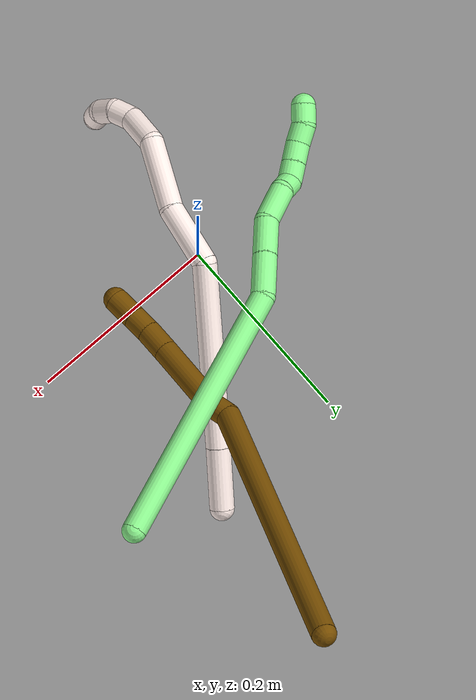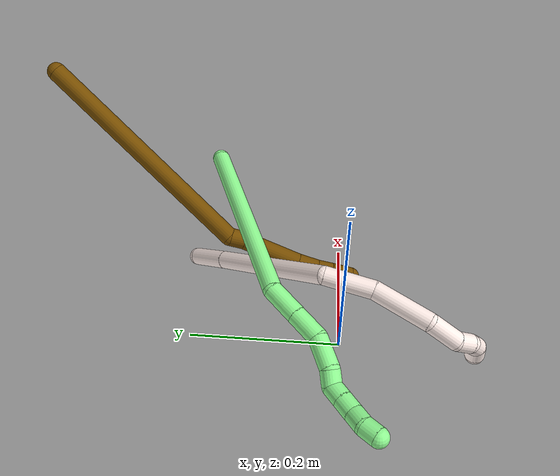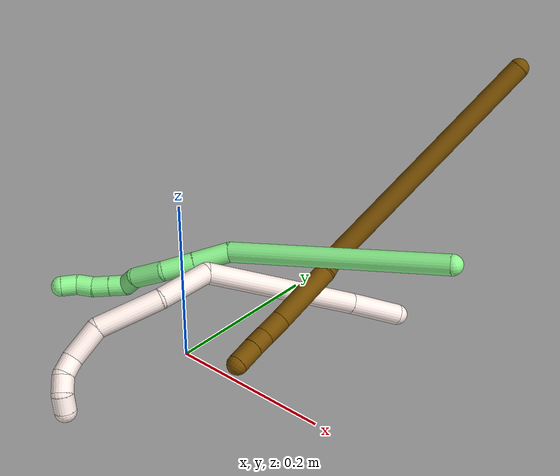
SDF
<sdf version="1.7">
 <world name="default">
  <model name="11">
   <static>0</static>
   <link name="11">
    <collision name="collision-cylinder-e_1_1_4">
     <pose>0.004546 -0.018647 0.025262 0.63588 0.14379 0.047395</pose>
     <geometry><cylinder><radius>0.0125</radius><length>0.063453</length></cylinder></geometry>
     <surface>
      <friction><ode><mu>1.16</mu><mu2>1.16</mu2><slip1>0</slip1><slip2>0</slip2></ode></friction>
      <contact><ode><kp>1e+06</kp><kd>1</kd><max_vel>0</max_vel><min_depth>0.001</min_depth></ode></contact>
     </surface>
    </collision>
    <visual name="visual-cylinder-e_1_1_4">
     <pose>0.004546 -0.018647 0.025262 0.63588 0.14379 0.047395</pose>
     <geometry><cylinder><radius>0.0125</radius><length>0.063453</length></cylinder></geometry>
     <material><ambient>1 0.933333 0.909804 1</ambient></material>
    </visual>
    <collision name="collision-cylinder-e_2_4_5">
     <pose>0.020405 -0.091372 0.126279 0.619955 0.120943 0.038781</pose>
     <geometry><cylinder><radius>0.0125</radius><length>0.187522</length></cylinder></geometry>
     <surface>
      <friction><ode><mu>1.16</mu><mu2>1.16</mu2><slip1>0</slip1><slip2>0</slip2></ode></friction>
      <contact><ode><kp>1e+06</kp><kd>1</kd><max_vel>0</max_vel><min_depth>0.001</min_depth></ode></contact>
     </surface>
    </collision>
    <visual name="visual-cylinder-e_2_4_5">
     <pose>0.020405 -0.091372 0.126279 0.619955 0.120943 0.038781</pose>
     <geometry><cylinder><radius>0.0125</radius><length>0.187522</length></cylinder></geometry>
     <material><ambient>1 0.933333 0.909804 1</ambient></material>
    </visual>
    <collision name="collision-cylinder-e_3_5_6">
     <pose>0.015041 -0.156907 0.227663 0.420425 -0.536004 -0.11705</pose>
     <geometry><cylinder><radius>0.0125</radius><length>0.065305</length></cylinder></geometry>
     <surface>
      <friction><ode><mu>1.16</mu><mu2>1.16</mu2><slip1>0</slip1><slip2>0</slip2></ode></friction>
      <contact><ode><kp>1e+06</kp><kd>1</kd><max_vel>0</max_vel><min_depth>0.001</min_depth></ode></contact>
     </surface>
    </collision>
    <visual name="visual-cylinder-e_3_5_6">
     <pose>0.015041 -0.156907 0.227663 0.420425 -0.536004 -0.11705</pose>
     <geometry><cylinder><radius>0.0125</radius><length>0.065305</length></cylinder></geometry>
     <material><ambient>1 0.933333 0.909804 1</ambient></material>
    </visual>
    <collision name="collision-cylinder-e_4_6_7">
     <pose>-0.015192 -0.174944 0.289131 0.181551 -0.356169 -0.032765</pose>
     <geometry><cylinder><radius>0.0125</radius><length>0.077758</length></cylinder></geometry>
     <surface>
      <friction><ode><mu>1.16</mu><mu2>1.16</mu2><slip1>0</slip1><slip2>0</slip2></ode></friction>
      <contact><ode><kp>1e+06</kp><kd>1</kd><max_vel>0</max_vel><min_depth>0.001</min_depth></ode></contact>
     </surface>
    </collision>
    <visual name="visual-cylinder-e_4_6_7">
     <pose>-0.015192 -0.174944 0.289131 0.181551 -0.356169 -0.032765</pose>
     <geometry><cylinder><radius>0.0125</radius><length>0.077758</length></cylinder></geometry>
     <material><ambient>1 0.933333 0.909804 1</ambient></material>
    </visual>
    <collision name="collision-cylinder-e_5_7_8">
     <pose>-0.043773 -0.180004 0.340401 -0.098192 -0.769708 0.0398</pose>
     <geometry><cylinder><radius>0.0125</radius><length>0.043181</length></cylinder></geometry>
     <surface>
      <friction><ode><mu>1.16</mu><mu2>1.16</mu2><slip1>0</slip1><slip2>0</slip2></ode></friction>
      <contact><ode><kp>1e+06</kp><kd>1</kd><max_vel>0</max_vel><min_depth>0.001</min_depth></ode></contact>
     </surface>
    </collision>
    <visual name="visual-cylinder-e_5_7_8">
     <pose>-0.043773 -0.180004 0.340401 -0.098192 -0.769708 0.0398</pose>
     <geometry><cylinder><radius>0.0125</radius><length>0.043181</length></cylinder></geometry>
     <material><ambient>1 0.933333 0.909804 1</ambient></material>
    </visual>
    <collision name="collision-cylinder-e_6_8_9">
     <pose>-0.068495 -0.180511 0.360602 0.401741 -1.07982 -0.242856</pose>
     <geometry><cylinder><radius>0.0125</radius><length>0.021991</length></cylinder></geometry>
     <surface>
      <friction><ode><mu>1.16</mu><mu2>1.16</mu2><slip1>0</slip1><slip2>0</slip2></ode></friction>
      <contact><ode><kp>1e+06</kp><kd>1</kd><max_vel>0</max_vel><min_depth>0.001</min_depth></ode></contact>
     </surface>
    </collision>
    <visual name="visual-cylinder-e_6_8_9">
     <pose>-0.068495 -0.180511 0.360602 0.401741 -1.07982 -0.242856</pose>
     <geometry><cylinder><radius>0.0125</radius><length>0.021991</length></cylinder></geometry>
     <material><ambient>1 0.933333 0.909804 1</ambient></material>
    </visual>
    <collision name="collision-cylinder-e_7_9_10">
     <pose>-0.088066 -0.180461 0.366922 -0.930143 -1.31419 0.738682</pose>
     <geometry><cylinder><radius>0.0125</radius><length>0.020418</length></cylinder></geometry>
     <surface>
      <friction><ode><mu>1.16</mu><mu2>1.16</mu2><slip1>0</slip1><slip2>0</slip2></ode></friction>
      <contact><ode><kp>1e+06</kp><kd>1</kd><max_vel>0</max_vel><min_depth>0.001</min_depth></ode></contact>
     </surface>
    </collision>
    <visual name="visual-cylinder-e_7_9_10">
     <pose>-0.088066 -0.180461 0.366922 -0.930143 -1.31419 0.738682</pose>
     <geometry><cylinder><radius>0.0125</radius><length>0.020418</length></cylinder></geometry>
     <material><ambient>1 0.933333 0.909804 1</ambient></material>
    </visual>
    <collision name="collision-cylinder-e_8_10_2">
     <pose>-0.105296 -0.171397 0.369392 -1.43977 -0.806793 0.716222</pose>
     <geometry><cylinder><radius>0.0125</radius><length>0.020373</length></cylinder></geometry>
     <surface>
      <friction><ode><mu>1.16</mu><mu2>1.16</mu2><slip1>0</slip1><slip2>0</slip2></ode></friction>
      <contact><ode><kp>1e+06</kp><kd>1</kd><max_vel>0</max_vel><min_depth>0.001</min_depth></ode></contact>
     </surface>
    </collision>
    <visual name="visual-cylinder-e_8_10_2">
     <pose>-0.105296 -0.171397 0.369392 -1.43977 -0.806793 0.716222</pose>
     <geometry><cylinder><radius>0.0125</radius><length>0.020373</length></cylinder></geometry>
     <material><ambient>1 0.933333 0.909804 1</ambient></material>
    </visual>
    <collision name="collision-sphere-2">
     <pose>-0.112651 -0.16441 0.370313 0 -0 0</pose>
     <geometry><sphere><radius>0.0125</radius></sphere></geometry>
     <surface>
      <friction><ode><mu>1.16</mu><mu2>1.16</mu2><slip1>0</slip1><slip2>0</slip2></ode></friction>
      <contact><ode><kp>1e+06</kp><kd>1</kd><max_vel>0</max_vel><min_depth>0.001</min_depth></ode></contact>
     </surface>
    </collision>
    <visual name="visual-sphere-2">
     <pose>-0.112651 -0.16441 0.370313 0 -0 0</pose>
     <geometry><sphere><radius>0.0125</radius></sphere></geometry>
     <material><ambient>1 0.933333 0.909804 1</ambient></material>
    </visual>
    <collision name="collision-sphere-10">
     <pose>-0.097941 -0.178384 0.368471 0 -0 0</pose>
     <geometry><sphere><radius>0.0125</radius></sphere></geometry>
     <surface>
      <friction><ode><mu>1.16</mu><mu2>1.16</mu2><slip1>0</slip1><slip2>0</slip2></ode></friction>
      <contact><ode><kp>1e+06</kp><kd>1</kd><max_vel>0</max_vel><min_depth>0.001</min_depth></ode></contact>
     </surface>
    </collision>
    <visual name="visual-sphere-10">
     <pose>-0.097941 -0.178384 0.368471 0 -0 0</pose>
     <geometry><sphere><radius>0.0125</radius></sphere></geometry>
     <material><ambient>1 0.933333 0.909804 1</ambient></material>
    </visual>
    <collision name="collision-sphere-9">
     <pose>-0.078192 -0.182538 0.365374 0 -0 0</pose>
     <geometry><sphere><radius>0.0125</radius></sphere></geometry>
     <surface>
      <friction><ode><mu>1.16</mu><mu2>1.16</mu2><slip1>0</slip1><slip2>0</slip2></ode></friction>
      <contact><ode><kp>1e+06</kp><kd>1</kd><max_vel>0</max_vel><min_depth>0.001</min_depth></ode></contact>
     </surface>
    </collision>
    <visual name="visual-sphere-9">
     <pose>-0.078192 -0.182538 0.365374 0 -0 0</pose>
     <geometry><sphere><radius>0.0125</radius></sphere></geometry>
     <material><ambient>1 0.933333 0.909804 1</ambient></material>
    </visual>
    <collision name="collision-sphere-4">
     <pose>0.009092 -0.037295 0.050524 0 -0 0</pose>
     <geometry><sphere><radius>0.0125</radius></sphere></geometry>
     <surface>
      <friction><ode><mu>1.16</mu><mu2>1.16</mu2><slip1>0</slip1><slip2>0</slip2></ode></friction>
      <contact><ode><kp>1e+06</kp><kd>1</kd><max_vel>0</max_vel><min_depth>0.001</min_depth></ode></contact>
     </surface>
    </collision>
    <visual name="visual-sphere-4">
     <pose>0.009092 -0.037295 0.050524 0 -0 0</pose>
     <geometry><sphere><radius>0.0125</radius></sphere></geometry>
     <material><ambient>1 0.933333 0.909804 1</ambient></material>
    </visual>
    <collision name="collision-sphere-1">
     <geometry><sphere><radius>0.0125</radius></sphere></geometry>
     <surface>
      <friction><ode><mu>1.16</mu><mu2>1.16</mu2><slip1>0</slip1><slip2>0</slip2></ode></friction>
      <contact><ode><kp>1e+06</kp><kd>1</kd><max_vel>0</max_vel><min_depth>0.001</min_depth></ode></contact>
     </surface>
    </collision>
    <visual name="visual-sphere-1">
     <geometry><sphere><radius>0.0125</radius></sphere></geometry>
     <material><ambient>1 0.933333 0.909804 1</ambient></material>
    </visual>
    <collision name="collision-sphere-8">
     <pose>-0.058799 -0.178484 0.355831 0 -0 0</pose>
     <geometry><sphere><radius>0.0125</radius></sphere></geometry>
     <surface>
      <friction><ode><mu>1.16</mu><mu2>1.16</mu2><slip1>0</slip1><slip2>0</slip2></ode></friction>
      <contact><ode><kp>1e+06</kp><kd>1</kd><max_vel>0</max_vel><min_depth>0.001</min_depth></ode></contact>
     </surface>
    </collision>
    <visual name="visual-sphere-8">
     <pose>-0.058799 -0.178484 0.355831 0 -0 0</pose>
     <geometry><sphere><radius>0.0125</radius></sphere></geometry>
     <material><ambient>1 0.933333 0.909804 1</ambient></material>
    </visual>
    <collision name="collision-sphere-5">
     <pose>0.031717 -0.145449 0.202034 0 -0 0</pose>
     <geometry><sphere><radius>0.0125</radius></sphere></geometry>
     <surface>
      <friction><ode><mu>1.16</mu><mu2>1.16</mu2><slip1>0</slip1><slip2>0</slip2></ode></friction>
      <contact><ode><kp>1e+06</kp><kd>1</kd><max_vel>0</max_vel><min_depth>0.001</min_depth></ode></contact>
     </surface>
    </collision>
    <visual name="visual-sphere-5">
     <pose>0.031717 -0.145449 0.202034 0 -0 0</pose>
     <geometry><sphere><radius>0.0125</radius></sphere></geometry>
     <material><ambient>1 0.933333 0.909804 1</ambient></material>
    </visual>
    <collision name="collision-sphere-6">
     <pose>-0.001635 -0.168365 0.253291 0 -0 0</pose>
     <geometry><sphere><radius>0.0125</radius></sphere></geometry>
     <surface>
      <friction><ode><mu>1.16</mu><mu2>1.16</mu2><slip1>0</slip1><slip2>0</slip2></ode></friction>
      <contact><ode><kp>1e+06</kp><kd>1</kd><max_vel>0</max_vel><min_depth>0.001</min_depth></ode></contact>
     </surface>
    </collision>
    <visual name="visual-sphere-6">
     <pose>-0.001635 -0.168365 0.253291 0 -0 0</pose>
     <geometry><sphere><radius>0.0125</radius></sphere></geometry>
     <material><ambient>1 0.933333 0.909804 1</ambient></material>
    </visual>
    <collision name="collision-sphere-7">
     <pose>-0.028748 -0.181524 0.324972 0 -0 0</pose>
     <geometry><sphere><radius>0.0125</radius></sphere></geometry>
     <surface>
      <friction><ode><mu>1.16</mu><mu2>1.16</mu2><slip1>0</slip1><slip2>0</slip2></ode></friction>
      <contact><ode><kp>1e+06</kp><kd>1</kd><max_vel>0</max_vel><min_depth>0.001</min_depth></ode></contact>
     </surface>
    </collision>
    <visual name="visual-sphere-7">
     <pose>-0.028748 -0.181524 0.324972 0 -0 0</pose>
     <geometry><sphere><radius>0.0125</radius></sphere></geometry>
     <material><ambient>1 0.933333 0.909804 1</ambient></material>
    </visual>
    <inertial>
     <pose>-0.006848 -0.122173 0.200558 0 -0 0</pose>
     <mass>0.5</mass>
     <inertia>
      <ixx>0.000656</ixx>
      <ixy>0</ixy>
      <ixz>0</ixz>
      <iyy>0.000558</iyy>
      <iyz>0</iyz>
      <izz>0.000346</izz>
     </inertia>
    </inertial>
   </link>
   <pose>0.152605 0.213244 0.01519 -1.83249 -0.53856 2.42559</pose>
  </model>
  <model name="12">
   <static>0</static>
   <link name="12">
    <collision name="collision-cylinder-e_1_1_4">
     <pose>-0.023854 -0.02185 -0.15649 3.00287 -0.149836 -1.64803</pose>
     <geometry><cylinder><radius>0.0125</radius><length>0.319597</length></cylinder></geometry>
     <surface>
      <friction><ode><mu>1.16</mu><mu2>1.16</mu2><slip1>0</slip1><slip2>0</slip2></ode></friction>
      <contact><ode><kp>1e+06</kp><kd>1</kd><max_vel>0</max_vel><min_depth>0.001</min_depth></ode></contact>
     </surface>
    </collision>
    <visual name="visual-cylinder-e_1_1_4">
     <pose>-0.023854 -0.02185 -0.15649 3.00287 -0.149836 -1.64803</pose>
     <geometry><cylinder><radius>0.0125</radius><length>0.319597</length></cylinder></geometry>
     <material><ambient>0.466667 0.301961 0 1</ambient></material>
    </visual>
    <collision name="collision-cylinder-e_2_4_5">
     <pose>-0.043577 -0.046496 -0.32247 2.85506 0.395586 1.89382</pose>
     <geometry><cylinder><radius>0.0125</radius><length>0.021443</length></cylinder></geometry>
     <surface>
      <friction><ode><mu>1.16</mu><mu2>1.16</mu2><slip1>0</slip1><slip2>0</slip2></ode></friction>
      <contact><ode><kp>1e+06</kp><kd>1</kd><max_vel>0</max_vel><min_depth>0.001</min_depth></ode></contact>
     </surface>
    </collision>
    <visual name="visual-cylinder-e_2_4_5">
     <pose>-0.043577 -0.046496 -0.32247 2.85506 0.395586 1.89382</pose>
     <geometry><cylinder><radius>0.0125</radius><length>0.021443</length></cylinder></geometry>
     <material><ambient>0.466667 0.301961 0 1</ambient></material>
    </visual>
    <collision name="collision-cylinder-e_3_5_6">
     <pose>-0.033097 -0.063024 -0.369646 2.79216 0.156959 0.838248</pose>
     <geometry><cylinder><radius>0.0125</radius><length>0.081218</length></cylinder></geometry>
     <surface>
      <friction><ode><mu>1.16</mu><mu2>1.16</mu2><slip1>0</slip1><slip2>0</slip2></ode></friction>
      <contact><ode><kp>1e+06</kp><kd>1</kd><max_vel>0</max_vel><min_depth>0.001</min_depth></ode></contact>
     </surface>
    </collision>
    <visual name="visual-cylinder-e_3_5_6">
     <pose>-0.033097 -0.063024 -0.369646 2.79216 0.156959 0.838248</pose>
     <geometry><cylinder><radius>0.0125</radius><length>0.081218</length></cylinder></geometry>
     <material><ambient>0.466667 0.301961 0 1</ambient></material>
    </visual>
    <collision name="collision-cylinder-e_4_6_7">
     <pose>-0.023942 -0.082466 -0.420097 2.72096 0.198099 0.871357</pose>
     <geometry><cylinder><radius>0.0125</radius><length>0.028525</length></cylinder></geometry>
     <surface>
      <friction><ode><mu>1.16</mu><mu2>1.16</mu2><slip1>0</slip1><slip2>0</slip2></ode></friction>
      <contact><ode><kp>1e+06</kp><kd>1</kd><max_vel>0</max_vel><min_depth>0.001</min_depth></ode></contact>
     </surface>
    </collision>
    <visual name="visual-cylinder-e_4_6_7">
     <pose>-0.023942 -0.082466 -0.420097 2.72096 0.198099 0.871357</pose>
     <geometry><cylinder><radius>0.0125</radius><length>0.028525</length></cylinder></geometry>
     <material><ambient>0.466667 0.301961 0 1</ambient></material>
    </visual>
    <collision name="collision-cylinder-e_5_7_8">
     <pose>-0.018205 -0.09283 -0.441854 2.66404 0.281737 1.055</pose>
     <geometry><cylinder><radius>0.0125</radius><length>0.021083</length></cylinder></geometry>
     <surface>
      <friction><ode><mu>1.16</mu><mu2>1.16</mu2><slip1>0</slip1><slip2>0</slip2></ode></friction>
      <contact><ode><kp>1e+06</kp><kd>1</kd><max_vel>0</max_vel><min_depth>0.001</min_depth></ode></contact>
     </surface>
    </collision>
    <visual name="visual-cylinder-e_5_7_8">
     <pose>-0.018205 -0.09283 -0.441854 2.66404 0.281737 1.055</pose>
     <geometry><cylinder><radius>0.0125</radius><length>0.021083</length></cylinder></geometry>
     <material><ambient>0.466667 0.301961 0 1</ambient></material>
    </visual>
    <collision name="collision-cylinder-e_6_8_2">
     <pose>-0.011422 -0.10332 -0.463053 2.69559 0.277373 1.1035</pose>
     <geometry><cylinder><radius>0.0125</radius><length>0.028134</length></cylinder></geometry>
     <surface>
      <friction><ode><mu>1.16</mu><mu2>1.16</mu2><slip1>0</slip1><slip2>0</slip2></ode></friction>
      <contact><ode><kp>1e+06</kp><kd>1</kd><max_vel>0</max_vel><min_depth>0.001</min_depth></ode></contact>
     </surface>
    </collision>
    <visual name="visual-cylinder-e_6_8_2">
     <pose>-0.011422 -0.10332 -0.463053 2.69559 0.277373 1.1035</pose>
     <geometry><cylinder><radius>0.0125</radius><length>0.028134</length></cylinder></geometry>
     <material><ambient>0.466667 0.301961 0 1</ambient></material>
    </visual>
    <collision name="collision-sphere-2">
     <pose>-0.00757 -0.109156 -0.475259 0 -0 0</pose>
     <geometry><sphere><radius>0.0125</radius></sphere></geometry>
     <surface>
      <friction><ode><mu>1.16</mu><mu2>1.16</mu2><slip1>0</slip1><slip2>0</slip2></ode></friction>
      <contact><ode><kp>1e+06</kp><kd>1</kd><max_vel>0</max_vel><min_depth>0.001</min_depth></ode></contact>
     </surface>
    </collision>
    <visual name="visual-sphere-2">
     <pose>-0.00757 -0.109156 -0.475259 0 -0 0</pose>
     <geometry><sphere><radius>0.0125</radius></sphere></geometry>
     <material><ambient>0.466667 0.301961 0 1</ambient></material>
    </visual>
    <collision name="collision-sphere-4">
     <pose>-0.047708 -0.043699 -0.31298 0 -0 0</pose>
     <geometry><sphere><radius>0.0125</radius></sphere></geometry>
     <surface>
      <friction><ode><mu>1.16</mu><mu2>1.16</mu2><slip1>0</slip1><slip2>0</slip2></ode></friction>
      <contact><ode><kp>1e+06</kp><kd>1</kd><max_vel>0</max_vel><min_depth>0.001</min_depth></ode></contact>
     </surface>
    </collision>
    <visual name="visual-sphere-4">
     <pose>-0.047708 -0.043699 -0.31298 0 -0 0</pose>
     <geometry><sphere><radius>0.0125</radius></sphere></geometry>
     <material><ambient>0.466667 0.301961 0 1</ambient></material>
    </visual>
    <collision name="collision-sphere-1">
     <geometry><sphere><radius>0.0125</radius></sphere></geometry>
     <surface>
      <friction><ode><mu>1.16</mu><mu2>1.16</mu2><slip1>0</slip1><slip2>0</slip2></ode></friction>
      <contact><ode><kp>1e+06</kp><kd>1</kd><max_vel>0</max_vel><min_depth>0.001</min_depth></ode></contact>
     </surface>
    </collision>
    <visual name="visual-sphere-1">
     <geometry><sphere><radius>0.0125</radius></sphere></geometry>
     <material><ambient>0.466667 0.301961 0 1</ambient></material>
    </visual>
    <collision name="collision-sphere-8">
     <pose>-0.015274 -0.097484 -0.450847 0 -0 0</pose>
     <geometry><sphere><radius>0.0125</radius></sphere></geometry>
     <surface>
      <friction><ode><mu>1.16</mu><mu2>1.16</mu2><slip1>0</slip1><slip2>0</slip2></ode></friction>
      <contact><ode><kp>1e+06</kp><kd>1</kd><max_vel>0</max_vel><min_depth>0.001</min_depth></ode></contact>
     </surface>
    </collision>
    <visual name="visual-sphere-8">
     <pose>-0.015274 -0.097484 -0.450847 0 -0 0</pose>
     <geometry><sphere><radius>0.0125</radius></sphere></geometry>
     <material><ambient>0.466667 0.301961 0 1</ambient></material>
    </visual>
    <collision name="collision-sphere-5">
     <pose>-0.039445 -0.049292 -0.33196 0 -0 0</pose>
     <geometry><sphere><radius>0.0125</radius></sphere></geometry>
     <surface>
      <friction><ode><mu>1.16</mu><mu2>1.16</mu2><slip1>0</slip1><slip2>0</slip2></ode></friction>
      <contact><ode><kp>1e+06</kp><kd>1</kd><max_vel>0</max_vel><min_depth>0.001</min_depth></ode></contact>
     </surface>
    </collision>
    <visual name="visual-sphere-5">
     <pose>-0.039445 -0.049292 -0.33196 0 -0 0</pose>
     <geometry><sphere><radius>0.0125</radius></sphere></geometry>
     <material><ambient>0.466667 0.301961 0 1</ambient></material>
    </visual>
    <collision name="collision-sphere-6">
     <pose>-0.026749 -0.076756 -0.407332 0 -0 0</pose>
     <geometry><sphere><radius>0.0125</radius></sphere></geometry>
     <surface>
      <friction><ode><mu>1.16</mu><mu2>1.16</mu2><slip1>0</slip1><slip2>0</slip2></ode></friction>
      <contact><ode><kp>1e+06</kp><kd>1</kd><max_vel>0</max_vel><min_depth>0.001</min_depth></ode></contact>
     </surface>
    </collision>
    <visual name="visual-sphere-6">
     <pose>-0.026749 -0.076756 -0.407332 0 -0 0</pose>
     <geometry><sphere><radius>0.0125</radius></sphere></geometry>
     <material><ambient>0.466667 0.301961 0 1</ambient></material>
    </visual>
    <collision name="collision-sphere-7">
     <pose>-0.021136 -0.088176 -0.432861 0 -0 0</pose>
     <geometry><sphere><radius>0.0125</radius></sphere></geometry>
     <surface>
      <friction><ode><mu>1.16</mu><mu2>1.16</mu2><slip1>0</slip1><slip2>0</slip2></ode></friction>
      <contact><ode><kp>1e+06</kp><kd>1</kd><max_vel>0</max_vel><min_depth>0.001</min_depth></ode></contact>
     </surface>
    </collision>
    <visual name="visual-sphere-7">
     <pose>-0.021136 -0.088176 -0.432861 0 -0 0</pose>
     <geometry><sphere><radius>0.0125</radius></sphere></geometry>
     <material><ambient>0.466667 0.301961 0 1</ambient></material>
    </visual>
    <inertial>
     <pose>-0.025269 -0.04063 -0.242554 0 -0 0</pose>
     <mass>0.5</mass>
     <inertia>
      <ixx>-0.002825</ixx>
      <ixy>0</ixy>
      <ixz>0</ixz>
      <iyy>-0.002425</iyy>
      <iyz>0</iyz>
      <izz>0.000754</izz>
     </inertia>
    </inertial>
   </link>
   <pose>0.183855 0.394597 0.291298 -0.796089 -0.169619 -0.294868</pose>
  </model>
  <model name="13">
   <static>0</static>
   <link name="13">
    <collision name="collision-cylinder-e_1_1_4">
     <pose>-0.1093 0.081219 0.008796 -1.46291 -0.928943 0.845203</pose>
     <geometry><cylinder><radius>0.0125</radius><length>0.272913</length></cylinder></geometry>
     <surface>
      <friction><ode><mu>1.16</mu><mu2>1.16</mu2><slip1>0</slip1><slip2>0</slip2></ode></friction>
      <contact><ode><kp>1e+06</kp><kd>1</kd><max_vel>0</max_vel><min_depth>0.001</min_depth></ode></contact>
     </surface>
    </collision>
    <visual name="visual-cylinder-e_1_1_4">
     <pose>-0.1093 0.081219 0.008796 -1.46291 -0.928943 0.845203</pose>
     <geometry><cylinder><radius>0.0125</radius><length>0.272913</length></cylinder></geometry>
     <material><ambient>0.564706 0.984314 0.572549 1</ambient></material>
    </visual>
    <collision name="collision-cylinder-e_2_4_5">
     <pose>-0.229186 0.181761 0.022235 -1.33502 -0.489475 0.388732</pose>
     <geometry><cylinder><radius>0.0125</radius><length>0.045034</length></cylinder></geometry>
     <surface>
      <friction><ode><mu>1.16</mu><mu2>1.16</mu2><slip1>0</slip1><slip2>0</slip2></ode></friction>
      <contact><ode><kp>1e+06</kp><kd>1</kd><max_vel>0</max_vel><min_depth>0.001</min_depth></ode></contact>
     </surface>
    </collision>
    <visual name="visual-cylinder-e_2_4_5">
     <pose>-0.229186 0.181761 0.022235 -1.33502 -0.489475 0.388732</pose>
     <geometry><cylinder><radius>0.0125</radius><length>0.045034</length></cylinder></geometry>
     <material><ambient>0.564706 0.984314 0.572549 1</ambient></material>
    </visual>
    <collision name="collision-cylinder-e_3_5_6">
     <pose>-0.249008 0.217864 0.030882 -1.33651 -0.491534 0.390973</pose>
     <geometry><cylinder><radius>0.0125</radius><length>0.039134</length></cylinder></geometry>
     <surface>
      <friction><ode><mu>1.16</mu><mu2>1.16</mu2><slip1>0</slip1><slip2>0</slip2></ode></friction>
      <contact><ode><kp>1e+06</kp><kd>1</kd><max_vel>0</max_vel><min_depth>0.001</min_depth></ode></contact>
     </surface>
    </collision>
    <visual name="visual-cylinder-e_3_5_6">
     <pose>-0.249008 0.217864 0.030882 -1.33651 -0.491534 0.390973</pose>
     <geometry><cylinder><radius>0.0125</radius><length>0.039134</length></cylinder></geometry>
     <material><ambient>0.564706 0.984314 0.572549 1</ambient></material>
    </visual>
    <collision name="collision-cylinder-e_4_6_7">
     <pose>-0.273011 0.246867 0.041516 -1.07385 -0.815437 0.503309</pose>
     <geometry><cylinder><radius>0.0125</radius><length>0.04057</length></cylinder></geometry>
     <surface>
      <friction><ode><mu>1.16</mu><mu2>1.16</mu2><slip1>0</slip1><slip2>0</slip2></ode></friction>
      <contact><ode><kp>1e+06</kp><kd>1</kd><max_vel>0</max_vel><min_depth>0.001</min_depth></ode></contact>
     </surface>
    </collision>
    <visual name="visual-cylinder-e_4_6_7">
     <pose>-0.273011 0.246867 0.041516 -1.07385 -0.815437 0.503309</pose>
     <geometry><cylinder><radius>0.0125</radius><length>0.04057</length></cylinder></geometry>
     <material><ambient>0.564706 0.984314 0.572549 1</ambient></material>
    </visual>
    <collision name="collision-cylinder-e_5_7_8">
     <pose>-0.294399 0.262821 0.05489 -0.505119 -0.709646 0.190652</pose>
     <geometry><cylinder><radius>0.0125</radius><length>0.020318</length></cylinder></geometry>
     <surface>
      <friction><ode><mu>1.16</mu><mu2>1.16</mu2><slip1>0</slip1><slip2>0</slip2></ode></friction>
      <contact><ode><kp>1e+06</kp><kd>1</kd><max_vel>0</max_vel><min_depth>0.001</min_depth></ode></contact>
     </surface>
    </collision>
    <visual name="visual-cylinder-e_5_7_8">
     <pose>-0.294399 0.262821 0.05489 -0.505119 -0.709646 0.190652</pose>
     <geometry><cylinder><radius>0.0125</radius><length>0.020318</length></cylinder></geometry>
     <material><ambient>0.564706 0.984314 0.572549 1</ambient></material>
    </visual>
    <collision name="collision-cylinder-e_6_8_9">
     <pose>-0.307203 0.27463 0.062031 -1.5217 -0.65276 0.623508</pose>
     <geometry><cylinder><radius>0.0125</radius><length>0.020368</length></cylinder></geometry>
     <surface>
      <friction><ode><mu>1.16</mu><mu2>1.16</mu2><slip1>0</slip1><slip2>0</slip2></ode></friction>
      <contact><ode><kp>1e+06</kp><kd>1</kd><max_vel>0</max_vel><min_depth>0.001</min_depth></ode></contact>
     </surface>
    </collision>
    <visual name="visual-cylinder-e_6_8_9">
     <pose>-0.307203 0.27463 0.062031 -1.5217 -0.65276 0.623508</pose>
     <geometry><cylinder><radius>0.0125</radius><length>0.020368</length></cylinder></geometry>
     <material><ambient>0.564706 0.984314 0.572549 1</ambient></material>
    </visual>
    <collision name="collision-cylinder-e_7_9_10">
     <pose>-0.319822 0.29108 0.062908 -1.51347 -0.654611 0.62048</pose>
     <geometry><cylinder><radius>0.0125</radius><length>0.021133</length></cylinder></geometry>
     <surface>
      <friction><ode><mu>1.16</mu><mu2>1.16</mu2><slip1>0</slip1><slip2>0</slip2></ode></friction>
      <contact><ode><kp>1e+06</kp><kd>1</kd><max_vel>0</max_vel><min_depth>0.001</min_depth></ode></contact>
     </surface>
    </collision>
    <visual name="visual-cylinder-e_7_9_10">
     <pose>-0.319822 0.29108 0.062908 -1.51347 -0.654611 0.62048</pose>
     <geometry><cylinder><radius>0.0125</radius><length>0.021133</length></cylinder></geometry>
     <material><ambient>0.564706 0.984314 0.572549 1</ambient></material>
    </visual>
    <collision name="collision-cylinder-e_8_10_11">
     <pose>-0.333056 0.306872 0.061889 -1.77015 -0.7316 0.875715</pose>
     <geometry><cylinder><radius>0.0125</radius><length>0.020358</length></cylinder></geometry>
     <surface>
      <friction><ode><mu>1.16</mu><mu2>1.16</mu2><slip1>0</slip1><slip2>0</slip2></ode></friction>
      <contact><ode><kp>1e+06</kp><kd>1</kd><max_vel>0</max_vel><min_depth>0.001</min_depth></ode></contact>
     </surface>
    </collision>
    <visual name="visual-cylinder-e_8_10_11">
     <pose>-0.333056 0.306872 0.061889 -1.77015 -0.7316 0.875715</pose>
     <geometry><cylinder><radius>0.0125</radius><length>0.020358</length></cylinder></geometry>
     <material><ambient>0.564706 0.984314 0.572549 1</ambient></material>
    </visual>
    <collision name="collision-cylinder-e_9_11_2">
     <pose>-0.34406 0.323462 0.060143 -1.59755 -0.429849 0.441135</pose>
     <geometry><cylinder><radius>0.0125</radius><length>0.020172</length></cylinder></geometry>
     <surface>
      <friction><ode><mu>1.16</mu><mu2>1.16</mu2><slip1>0</slip1><slip2>0</slip2></ode></friction>
      <contact><ode><kp>1e+06</kp><kd>1</kd><max_vel>0</max_vel><min_depth>0.001</min_depth></ode></contact>
     </surface>
    </collision>
    <visual name="visual-cylinder-e_9_11_2">
     <pose>-0.34406 0.323462 0.060143 -1.59755 -0.429849 0.441135</pose>
     <geometry><cylinder><radius>0.0125</radius><length>0.020172</length></cylinder></geometry>
     <material><ambient>0.564706 0.984314 0.572549 1</ambient></material>
    </visual>
    <collision name="collision-sphere-2">
     <pose>-0.348263 0.332627 0.059898 0 -0 0</pose>
     <geometry><sphere><radius>0.0125</radius></sphere></geometry>
     <surface>
      <friction><ode><mu>1.16</mu><mu2>1.16</mu2><slip1>0</slip1><slip2>0</slip2></ode></friction>
      <contact><ode><kp>1e+06</kp><kd>1</kd><max_vel>0</max_vel><min_depth>0.001</min_depth></ode></contact>
     </surface>
    </collision>
    <visual name="visual-sphere-2">
     <pose>-0.348263 0.332627 0.059898 0 -0 0</pose>
     <geometry><sphere><radius>0.0125</radius></sphere></geometry>
     <material><ambient>0.564706 0.984314 0.572549 1</ambient></material>
    </visual>
    <collision name="collision-sphere-11">
     <pose>-0.339856 0.314297 0.060389 0 -0 0</pose>
     <geometry><sphere><radius>0.0125</radius></sphere></geometry>
     <surface>
      <friction><ode><mu>1.16</mu><mu2>1.16</mu2><slip1>0</slip1><slip2>0</slip2></ode></friction>
      <contact><ode><kp>1e+06</kp><kd>1</kd><max_vel>0</max_vel><min_depth>0.001</min_depth></ode></contact>
     </surface>
    </collision>
    <visual name="visual-sphere-11">
     <pose>-0.339856 0.314297 0.060389 0 -0 0</pose>
     <geometry><sphere><radius>0.0125</radius></sphere></geometry>
     <material><ambient>0.564706 0.984314 0.572549 1</ambient></material>
    </visual>
    <collision name="collision-sphere-10">
     <pose>-0.326256 0.299448 0.063389 0 -0 0</pose>
     <geometry><sphere><radius>0.0125</radius></sphere></geometry>
     <surface>
      <friction><ode><mu>1.16</mu><mu2>1.16</mu2><slip1>0</slip1><slip2>0</slip2></ode></friction>
      <contact><ode><kp>1e+06</kp><kd>1</kd><max_vel>0</max_vel><min_depth>0.001</min_depth></ode></contact>
     </surface>
    </collision>
    <visual name="visual-sphere-10">
     <pose>-0.326256 0.299448 0.063389 0 -0 0</pose>
     <geometry><sphere><radius>0.0125</radius></sphere></geometry>
     <material><ambient>0.564706 0.984314 0.572549 1</ambient></material>
    </visual>
    <collision name="collision-sphere-9">
     <pose>-0.313389 0.282711 0.062428 0 -0 0</pose>
     <geometry><sphere><radius>0.0125</radius></sphere></geometry>
     <surface>
      <friction><ode><mu>1.16</mu><mu2>1.16</mu2><slip1>0</slip1><slip2>0</slip2></ode></friction>
      <contact><ode><kp>1e+06</kp><kd>1</kd><max_vel>0</max_vel><min_depth>0.001</min_depth></ode></contact>
     </surface>
    </collision>
    <visual name="visual-sphere-9">
     <pose>-0.313389 0.282711 0.062428 0 -0 0</pose>
     <geometry><sphere><radius>0.0125</radius></sphere></geometry>
     <material><ambient>0.564706 0.984314 0.572549 1</ambient></material>
    </visual>
    <collision name="collision-sphere-4">
     <pose>-0.2186 0.162438 0.017593 0 -0 0</pose>
     <geometry><sphere><radius>0.0125</radius></sphere></geometry>
     <surface>
      <friction><ode><mu>1.16</mu><mu2>1.16</mu2><slip1>0</slip1><slip2>0</slip2></ode></friction>
      <contact><ode><kp>1e+06</kp><kd>1</kd><max_vel>0</max_vel><min_depth>0.001</min_depth></ode></contact>
     </surface>
    </collision>
    <visual name="visual-sphere-4">
     <pose>-0.2186 0.162438 0.017593 0 -0 0</pose>
     <geometry><sphere><radius>0.0125</radius></sphere></geometry>
     <material><ambient>0.564706 0.984314 0.572549 1</ambient></material>
    </visual>
    <collision name="collision-sphere-1">
     <geometry><sphere><radius>0.0125</radius></sphere></geometry>
     <surface>
      <friction><ode><mu>1.16</mu><mu2>1.16</mu2><slip1>0</slip1><slip2>0</slip2></ode></friction>
      <contact><ode><kp>1e+06</kp><kd>1</kd><max_vel>0</max_vel><min_depth>0.001</min_depth></ode></contact>
     </surface>
    </collision>
    <visual name="visual-sphere-1">
     <geometry><sphere><radius>0.0125</radius></sphere></geometry>
     <material><ambient>0.564706 0.984314 0.572549 1</ambient></material>
    </visual>
    <collision name="collision-sphere-8">
     <pose>-0.301018 0.26655 0.061634 0 -0 0</pose>
     <geometry><sphere><radius>0.0125</radius></sphere></geometry>
     <surface>
      <friction><ode><mu>1.16</mu><mu2>1.16</mu2><slip1>0</slip1><slip2>0</slip2></ode></friction>
      <contact><ode><kp>1e+06</kp><kd>1</kd><max_vel>0</max_vel><min_depth>0.001</min_depth></ode></contact>
     </surface>
    </collision>
    <visual name="visual-sphere-8">
     <pose>-0.301018 0.26655 0.061634 0 -0 0</pose>
     <geometry><sphere><radius>0.0125</radius></sphere></geometry>
     <material><ambient>0.564706 0.984314 0.572549 1</ambient></material>
    </visual>
    <collision name="collision-sphere-5">
     <pose>-0.239773 0.201085 0.026877 0 -0 0</pose>
     <geometry><sphere><radius>0.0125</radius></sphere></geometry>
     <surface>
      <friction><ode><mu>1.16</mu><mu2>1.16</mu2><slip1>0</slip1><slip2>0</slip2></ode></friction>
      <contact><ode><kp>1e+06</kp><kd>1</kd><max_vel>0</max_vel><min_depth>0.001</min_depth></ode></contact>
     </surface>
    </collision>
    <visual name="visual-sphere-5">
     <pose>-0.239773 0.201085 0.026877 0 -0 0</pose>
     <geometry><sphere><radius>0.0125</radius></sphere></geometry>
     <material><ambient>0.564706 0.984314 0.572549 1</ambient></material>
    </visual>
    <collision name="collision-sphere-6">
     <pose>-0.258243 0.234643 0.034887 0 -0 0</pose>
     <geometry><sphere><radius>0.0125</radius></sphere></geometry>
     <surface>
      <friction><ode><mu>1.16</mu><mu2>1.16</mu2><slip1>0</slip1><slip2>0</slip2></ode></friction>
      <contact><ode><kp>1e+06</kp><kd>1</kd><max_vel>0</max_vel><min_depth>0.001</min_depth></ode></contact>
     </surface>
    </collision>
    <visual name="visual-sphere-6">
     <pose>-0.258243 0.234643 0.034887 0 -0 0</pose>
     <geometry><sphere><radius>0.0125</radius></sphere></geometry>
     <material><ambient>0.564706 0.984314 0.572549 1</ambient></material>
    </visual>
    <collision name="collision-sphere-7">
     <pose>-0.287779 0.259091 0.048146 0 -0 0</pose>
     <geometry><sphere><radius>0.0125</radius></sphere></geometry>
     <surface>
      <friction><ode><mu>1.16</mu><mu2>1.16</mu2><slip1>0</slip1><slip2>0</slip2></ode></friction>
      <contact><ode><kp>1e+06</kp><kd>1</kd><max_vel>0</max_vel><min_depth>0.001</min_depth></ode></contact>
     </surface>
    </collision>
    <visual name="visual-sphere-7">
     <pose>-0.287779 0.259091 0.048146 0 -0 0</pose>
     <geometry><sphere><radius>0.0125</radius></sphere></geometry>
     <material><ambient>0.564706 0.984314 0.572549 1</ambient></material>
    </visual>
    <inertial>
     <pose>-0.187379 0.157499 0.024952 0 -0 0</pose>
     <mass>0.5</mass>
     <inertia>
      <ixx>0.001446</ixx>
      <ixy>0</ixy>
      <ixz>0</ixz>
      <iyy>0.001952</iyy>
      <iyz>0</iyz>
      <izz>0.000349</izz>
     </inertia>
    </inertial>
   </link>
   <pose>0.242947 0.186207 0.135845 -3.11277 -0.07318 -0.272229</pose>
  </model>
 </world>
</sdf>
